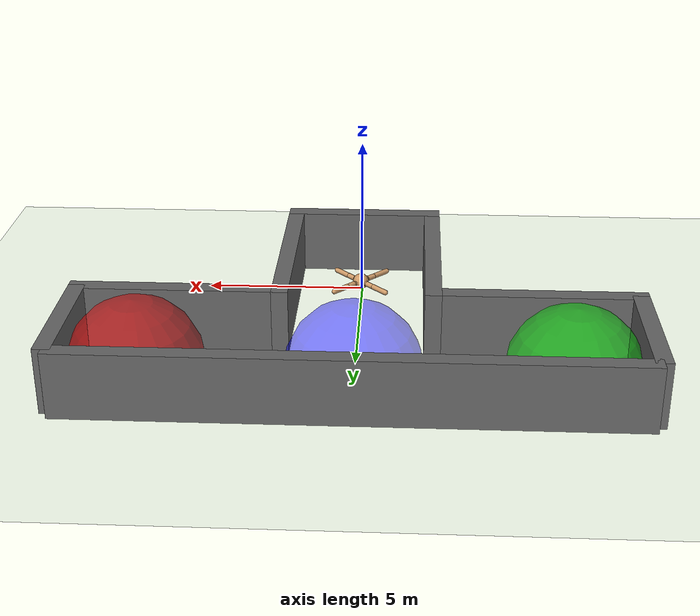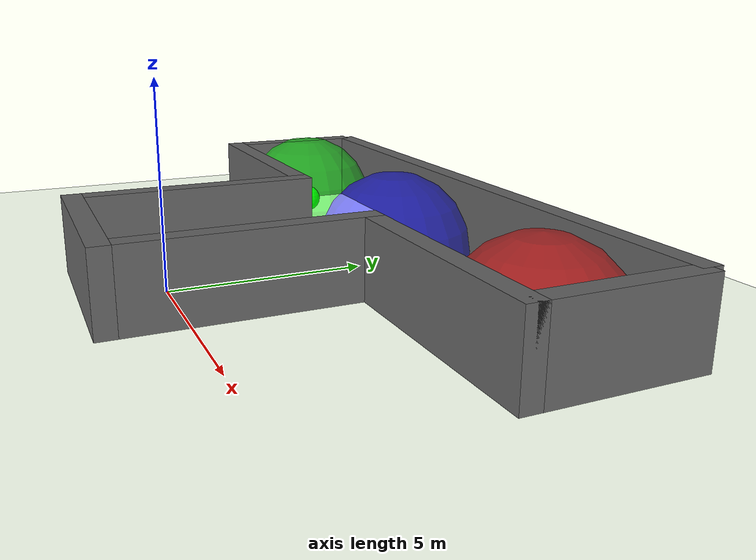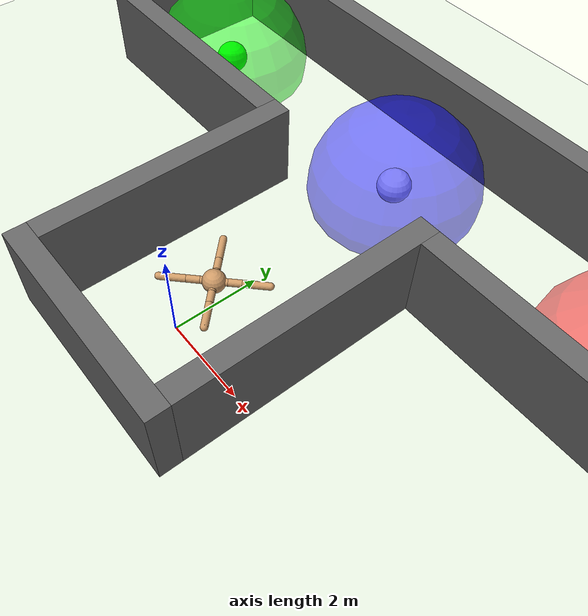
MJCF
<mujoco model="ant">
  <compiler angle="degree" coordinate="local" inertiafromgeom="true"/>
  <option integrator="RK4" timestep="0.02"/>
  <custom>
    <numeric data="0.0 0.0 0.55 1.0 0.0 0.0 0.0 0.0 1.0 0.0 -1.0 0.0 -1.0 0.0 1.0" name="init_qpos"/>
  </custom>
  <default>
    <joint armature="1" damping="1" limited="true"/>
    <geom conaffinity="0" condim="3" density="5.0" friction="1 0.5 0.5" margin="0.01" rgba="0.8 0.6 0.4 1"/>
  </default>
  <asset>
    <texture builtin="gradient" height="100" rgb1="1 1 1" rgb2="0 0 0" type="skybox" width="100"/>
    <texture builtin="flat" height="1278" mark="cross" markrgb="1 1 1" name="texgeom" random="0.01" rgb1="0.8 0.6 0.4" rgb2="0.8 0.6 0.4" type="cube" width="127"/>
    <texture builtin="checker" height="100" name="texplane" rgb1="0 0 0" rgb2="0.8 0.8 0.8" type="2d" width="100"/>
    <material name="MatPlane" reflectance="0.5" shininess="1" specular="1" texrepeat="60 60" texture="texplane"/>
    <material name="geom" texture="texgeom" texuniform="true"/>
  </asset>
  <worldbody>
    <light cutoff="100" diffuse="1 1 1" dir="-0 0 -1.3" directional="true" exponent="1" pos="0 0 1.3" specular=".1 .1 .1"/>
    <geom conaffinity="1" condim="3" material="MatPlane" name="floor" pos="0 0 0" rgba="0.8 0.9 0.8 1" size="40 40 40" type="plane"/>
    <body name="torso" pos="0 1.0 0.75">
      <camera name="track" mode="trackcom" pos="0 -3 0.3" xyaxes="1 0 0 0 0 1"/>
      <geom name="torso_geom" pos="0 0 0" size="0.25" type="sphere"/>
      <joint armature="0" damping="0" limited="false" margin="0.01" name="root" pos="0 0 0" type="free"/>
      <body name="front_left_leg" pos="0 0 0">
        <geom fromto="0.0 0.0 0.0 0.2 0.2 0.0" name="aux_1_geom" size="0.08" type="capsule"/>
        <body name="aux_1" pos="0.2 0.2 0">
          <joint axis="0 0 1" name="hip_1" pos="0.0 0.0 0.0" range="-30 30" type="hinge"/>
          <geom fromto="0.0 0.0 0.0 0.2 0.2 0.0" name="left_leg_geom" size="0.08" type="capsule"/>
          <body pos="0.2 0.2 0">
            <joint axis="-1 1 0" name="ankle_1" pos="0.0 0.0 0.0" range="30 70" type="hinge"/>
            <geom fromto="0.0 0.0 0.0 0.4 0.4 0.0" name="left_ankle_geom" size="0.08" type="capsule"/>
          </body>
        </body>
      </body>
      <body name="front_right_leg" pos="0 0 0">
        <geom fromto="0.0 0.0 0.0 -0.2 0.2 0.0" name="aux_2_geom" size="0.08" type="capsule"/>
        <body name="aux_2" pos="-0.2 0.2 0">
          <joint axis="0 0 1" name="hip_2" pos="0.0 0.0 0.0" range="-30 30" type="hinge"/>
          <geom fromto="0.0 0.0 0.0 -0.2 0.2 0.0" name="right_leg_geom" size="0.08" type="capsule"/>
          <body pos="-0.2 0.2 0">
            <joint axis="1 1 0" name="ankle_2" pos="0.0 0.0 0.0" range="-70 -30" type="hinge"/>
            <geom fromto="0.0 0.0 0.0 -0.4 0.4 0.0" name="right_ankle_geom" size="0.08" type="capsule"/>
          </body>
        </body>
      </body>
      <body name="back_leg" pos="0 0 0">
        <geom fromto="0.0 0.0 0.0 -0.2 -0.2 0.0" name="aux_3_geom" size="0.08" type="capsule"/>
        <body name="aux_3" pos="-0.2 -0.2 0">
          <joint axis="0 0 1" name="hip_3" pos="0.0 0.0 0.0" range="-30 30" type="hinge"/>
          <geom fromto="0.0 0.0 0.0 -0.2 -0.2 0.0" name="back_leg_geom" size="0.08" type="capsule"/>
          <body pos="-0.2 -0.2 0">
            <joint axis="-1 1 0" name="ankle_3" pos="0.0 0.0 0.0" range="-70 -30" type="hinge"/>
            <geom fromto="0.0 0.0 0.0 -0.4 -0.4 0.0" name="third_ankle_geom" size="0.08" type="capsule"/>
          </body>
        </body>
      </body>
      <body name="right_back_leg" pos="0 0 0">
        <geom fromto="0.0 0.0 0.0 0.2 -0.2 0.0" name="aux_4_geom" size="0.08" type="capsule"/>
        <body name="aux_4" pos="0.2 -0.2 0">
          <joint axis="0 0 1" name="hip_4" pos="0.0 0.0 0.0" range="-30 30" type="hinge"/>
          <geom fromto="0.0 0.0 0.0 0.2 -0.2 0.0" name="rightback_leg_geom" size="0.08" type="capsule"/>
          <body pos="0.2 -0.2 0">
            <joint axis="1 1 0" name="ankle_4" pos="0.0 0.0 0.0" range="30 70" type="hinge"/>
            <geom fromto="0.0 0.0 0.0 0.4 -0.4 0.0" name="fourth_ankle_geom" size="0.08" type="capsule"/>
          </body>
        </body>
      </body>
    </body>

    <!-- Create Barriers -->
    <body name="east_wall" pos="8.25 6.25 1">
      <geom type="box" size="0.25 2.0 1" contype="1" conaffinity="1" rgba="0.4 0.4 0.4 1" />
    </body>
    <body name="north_wall" pos="0 8.25 1">
      <geom type="box" size="8.25 0.25 1" contype="1" conaffinity="1" rgba="0.4 0.4 0.4 1" />
    </body>
    <body name="west_wall" pos="-8.25 6.25 1">
      <geom type="box" size="0.25 2.0 1" contype="1" conaffinity="1" rgba="0.4 0.4 0.4 1" />
    </body>

    <body name="south_wall_left" pos="-5.5 4.25 1">
      <geom type="box" size="3.0 0.25 1" contype="1" conaffinity="1" rgba="0.4 0.4 0.4 1" />
    </body>

    <body name="south_wall_right" pos="5.5 4.25 1">
      <geom type="box" size="3.0 0.25 1" contype="1" conaffinity="1" rgba="0.4 0.4 0.4 1" />
    </body>

    <body name="east_wall_below" pos="2.25 1.5 1">
      <geom type="box" size="0.25 3.0 1" contype="1" conaffinity="1" rgba="0.4 0.4 0.4 1" />
    </body>

    <body name="west_wall_below" pos="-2.25 1.5 1">
      <geom type="box" size="0.25 3.0 1" contype="1" conaffinity="1" rgba="0.4 0.4 0.4 1" />
    </body>

    <body name="north_wall_below" pos="0 -1.75 1">
      <geom type="box" size="2.5 0.25 1" contype="1" conaffinity="1" rgba="0.4 0.4 0.4 1" />
    </body>

    <body name="priest" pos="0.0 6.0 0.4">
        <site type="sphere" size="0.4" rgba="1 1 1 1" />
    </body>

    <body name="priest_area" pos="0.0 6.0 0.4">
        <site type="sphere" size="2.0" rgba="0 0 1 0.5" />
    </body>

    <!-- Create goal and subgoal visualizations -->
    <body name="goal_platform" pos="0 0 0.4" mocap="true">
        <site type="box" size="0.4 0.4 0.2" rgba="1 1 0 0" />
    </body>

    <body name="heaven" pos="-6.25 6.0 0.4" mocap="true">
        <site name="heaven" type="sphere" size="0.4" rgba="0 1 0 1" />
    </body>

    <body name="left_area" pos="-6.25 6.0 0.4">
        <site name="left_area" type="sphere" size="2.0" rgba="0 1 0 0.5" />
    </body>

    <body name="hell" pos="6.25 6.0 0.4" mocap="true">
        <site name="hell" type="sphere" size="0.4" rgba="0 1 0 1" />
    </body>

    <body name="right_area" pos="6.25 6.0 0.4">
        <site name="right_area" type="sphere" size="2.0" rgba="1 0 0 0.5" />
    </body>

    <!-- Subgoals -->
    <body name="subgoal_0" pos="0 0 0.4" mocap="true">
        <site type="box" size="0.4 0.4 0.2" rgba="1 0 1 0" />
    </body>

    <body name="subgoal_1" pos="0 0 0.4" mocap="true">
        <site type="box" size="0.4 0.4 0.2" rgba="0 1 0 0" />
    </body>

  </worldbody>
  <actuator>
    <motor ctrllimited="true" ctrlrange="-1.0 1.0" joint="hip_4" gear="15"/>
    <motor ctrllimited="true" ctrlrange="-1.0 1.0" joint="ankle_4" gear="15"/>
    <motor ctrllimited="true" ctrlrange="-1.0 1.0" joint="hip_1" gear="15"/>
    <motor ctrllimited="true" ctrlrange="-1.0 1.0" joint="ankle_1" gear="15"/>
    <motor ctrllimited="true" ctrlrange="-1.0 1.0" joint="hip_2" gear="15"/>
    <motor ctrllimited="true" ctrlrange="-1.0 1.0" joint="ankle_2" gear="15"/>
    <motor ctrllimited="true" ctrlrange="-1.0 1.0" joint="hip_3" gear="15"/>
    <motor ctrllimited="true" ctrlrange="-1.0 1.0" joint="ankle_3" gear="15"/>
  </actuator>
</mujoco>
